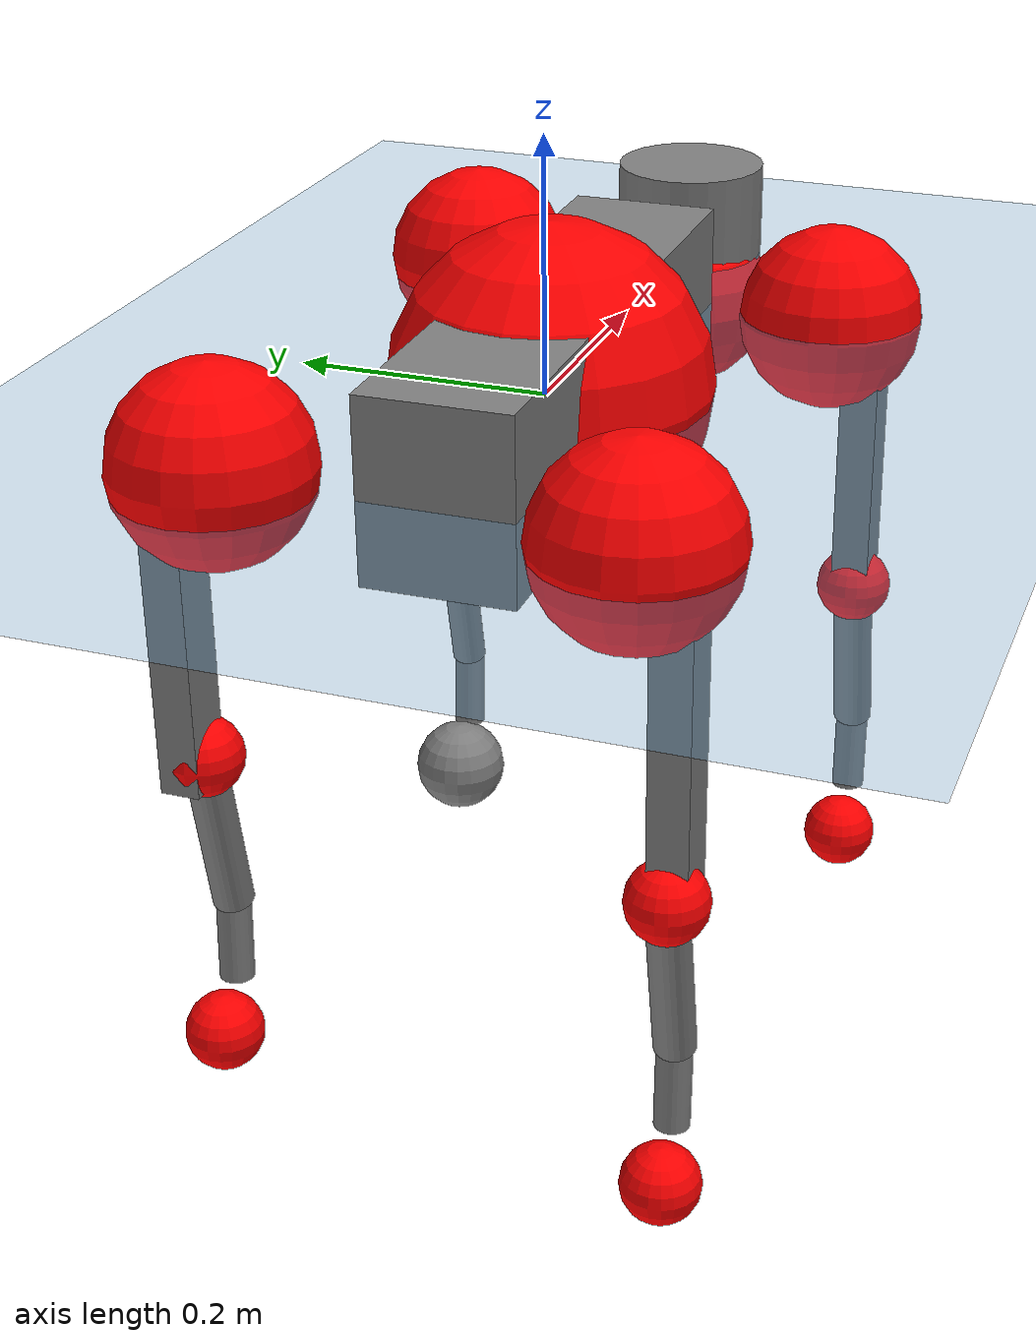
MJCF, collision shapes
<mujoco model="go2">
  <compiler angle="radian" assetdir="assets" balanceinertia="true" inertiafromgeom="false"/>

  <option timestep="0.005" density="1.2" viscosity="2e-05"/>

  <size nkey="1"/>

  <visual>
    <quality shadowsize="8192"/>
    <map shadowclip="0.5"/>
  </visual>

  <default>
    <default class="/">
      <geom contype="0" conaffinity="0" group="1" solref="-1000 -80"/>
      <site size="0.01 0.005 0.005" group="5"/>
      <general forcelimited="true" biastype="affine" gainprm="20" biasprm="0 -20 -0.5"/>
      <default class="go2">
        <joint armature="0.01" damping="0.01" frictionloss="0.2"/>
        <geom condim="1" margin="0.001"/>
        <default class="visual">
          <geom type="mesh" group="2"/>
        </default>
        <default class="collision">
          <geom group="3"/>
          <default class="foot">
            <geom size="0.022 0 0" condim="6" priority="1" friction="0.8 0.02 0.01" solimp="0.015 1 0.022"/>
          </default>
        </default>
        <default class="reward_collision_sphere">
          <geom group="5" rgba="1 0 0 1"/>
        </default>
      </default>
    </default>
  </default>

  <asset>
    <texture type="skybox" colorspace="auto" name="//unnamed_texture_0" builtin="gradient" rgb1="0.95 0.95 0.95" rgb2="0.95 0.95 0.95" width="100" height="600"/>
    <texture type="2d" colorspace="auto" name="texplane" builtin="checker" rgb1="0.345 0.575 0.748" rgb2="0.345 0.575 0.748" markrgb="1 1 1" width="512" height="512"/>
    <material name="MatPlane" class="/" texture="texplane" texuniform="true" texrepeat="2 2" specular="0.9"/>
    <material name="metal" class="/" rgba="0.9 0.95 0.95 1"/>
    <material name="black" class="/" rgba="0 0 0 1"/>
    <material name="white" class="/"/>
    <material name="gray" class="/" rgba="0.671705 0.692426 0.77427 1"/>
    <mesh name="base_0" class="/" file="base_0.obj"/>
    <mesh name="base_1" class="/" file="base_1.obj"/>
    <mesh name="base_2" class="/" file="base_2.obj"/>
    <mesh name="base_3" class="/" file="base_3.obj"/>
    <mesh name="base_4" class="/" file="base_4.obj"/>
    <mesh name="hip_0" class="/" file="hip_0.obj"/>
    <mesh name="hip_1" class="/" file="hip_1.obj"/>
    <mesh name="thigh_0" class="/" file="thigh_0.obj"/>
    <mesh name="thigh_1" class="/" file="thigh_1.obj"/>
    <mesh name="thigh_mirror_0" class="/" file="thigh_mirror_0.obj"/>
    <mesh name="thigh_mirror_1" class="/" file="thigh_mirror_1.obj"/>
    <mesh name="calf_0" class="/" file="calf_0.obj"/>
    <mesh name="calf_1" class="/" file="calf_1.obj"/>
    <mesh name="calf_mirror_0" class="/" file="calf_mirror_0.obj"/>
    <mesh name="calf_mirror_1" class="/" file="calf_mirror_1.obj"/>
    <mesh name="foot" class="/" file="foot.obj"/>
  </asset>

  <worldbody>
    <geom name="floor" class="/" size="100 100 0.125" type="plane" group="0" material="MatPlane"/>
    <light name="toplight_shadow" class="/" pos="0 0 5" dir="0.0990148 0.0990148 -0.990148" type="directional" ambient="0.04 0.04 0.04" diffuse="0.55 0.55 0.55" specular="0.12 0.12 0.12"/>
    <light name="toplight_fill" class="/" pos="0 0 5" dir="0.0990148 0.0990148 -0.990148" type="directional" castshadow="false" ambient="0.04 0.04 0.04" diffuse="0.3 0.3 0.3" specular="0.08 0.08 0.08"/>
    <body name="trunk" childclass="go2" pos="0.00939662 -0.00167441 0.00680834" quat="0.999991 -0.00227318 -0.00309406 0.00167433">
      <inertial pos="0.0344956 -0.00731984 -0.00602129" quat="0.0275101 0.692375 0.0343102 0.720197" mass="13.2141" diaginertia="0.315187 0.367988 0.0411979"/>
      <joint name="//unnamed_joint_0" type="free" armature="0" damping="0" frictionloss="0"/>
      <geom name="//unnamed_geom_1" class="visual" material="black" mesh="base_0"/>
      <geom name="//unnamed_geom_2" class="visual" material="black" mesh="base_1"/>
      <geom name="//unnamed_geom_3" class="visual" material="black" mesh="base_2"/>
      <geom name="//unnamed_geom_4" class="visual" material="white" mesh="base_3"/>
      <geom name="//unnamed_geom_5" class="visual" material="gray" mesh="base_4"/>
      <geom name="trunk_1" class="collision" size="0.236677 0.0588232 0.0717203" type="box"/>
      <geom name="trunk_2" class="collision" size="0.0629125 0.0566213" pos="0.371353 0 0.0116778" type="cylinder"/>
      <geom name="trunk_3" class="collision" size="0.0591378" pos="0.381776 0 -0.0700665"/>
      <geom name="//unnamed_geom_9" class="reward_collision_sphere" size="0.125825"/>
      <geom name="//unnamed_geom_10" class="reward_collision_sphere" size="0.075495" pos="0.364838 0 -0.0525499"/>
      <site name="imu" pos="-0.0703832 0.0732252 0.0741197" size="0.0125825"/>
      <camera name="track" pos="0 -2.60797 0" quat="0.707107 0.707107 0 0" mode="trackcom"/>
      <camera name="ego_camera" pos="0.406533 0 0.0525499" quat="-0.5 -0.5 0.5 0.5"/>
      <body name="FL_hip" pos="0.251775 0.0629476 0.00582555" quat="0.999975 -0.00209559 0.00628477 -0.00259515">
        <inertial pos="-6.00443e-05 0.00245576 0.00347909" quat="0.466029 0.490499 0.507094 0.533932" mass="1.12745" diaginertia="0.00280379 0.00191537 0.000798787"/>
        <joint name="FL_hip_joint" pos="0 0 0" axis="0.999304 0.0205552 -0.0311379" stiffness="0.0187756" range="-1.298 1.01228" armature="0.0058886" damping="0.0109142" frictionloss="0.274677"/>
        <geom name="//unnamed_geom_11" class="visual" material="metal" mesh="hip_0"/>
        <geom name="//unnamed_geom_12" class="visual" material="gray" mesh="hip_1"/>
        <geom name="//unnamed_geom_13" class="collision" size="0.0578795 0.025165" pos="0 0.104319 0" quat="0.707107 0.707107 0 0" type="cylinder"/>
        <geom name="//unnamed_geom_14" class="reward_collision_sphere" size="0.075495" pos="0 0.0912788 0"/>
        <body name="FL_thigh" pos="-0.000853491 0.127598 0.00428239" quat="1 0.00028007 -0.000348102 0.000126422">
          <inertial pos="-0.00509343 -0.0163916 -0.0234905" quat="0.82284 0.0766332 -0.033061 0.562112" mass="2.35861" diaginertia="0.0217495 0.0240386 0.00184967"/>
          <joint name="FL_thigh_joint" pos="0 0 0" axis="0.00272412 0.999937 0.0108679" range="-1.54609 3.20979" armature="0.0173544" damping="0.0813508" frictionloss="0.247466"/>
          <geom name="//unnamed_geom_15" class="visual" material="metal" mesh="thigh_0"/>
          <geom name="//unnamed_geom_16" class="visual" material="gray" mesh="thigh_1"/>
          <geom name="//unnamed_geom_17" class="collision" size="0.134004 0.0154136 0.0213903" pos="0 0 -0.124368" quat="0.707107 0 0.707107 0" type="box"/>
          <body name="FL_calf" pos="-0.0149346 -0.0134454 -0.257897" quat="1 0.000155129 3.91376e-05 -0.000124168">
            <inertial pos="0.0122315 0.00670757 -0.174065" quat="0.712459 -0.00266232 -0.00808322 0.701662" mass="0.409076" diaginertia="0.00501031 0.00578575 0.000118295"/>
            <joint name="FL_calf_joint" pos="0 0 0" axis="0.00943809 0.999879 0.0123728" stiffness="0.070625" range="-2.89904 -0.601918" armature="0.0133956" damping="0" frictionloss="0.268668"/>
            <geom name="//unnamed_geom_18" class="visual" material="gray" mesh="calf_0"/>
            <geom name="//unnamed_geom_19" class="visual" material="black" mesh="calf_1"/>
            <geom name="FL_calf0" class="collision" size="0.015099 0.075495" pos="0.0104239 0 -0.0700665" quat="0.994493 0 -0.104807 0" type="cylinder"/>
            <geom name="//unnamed_geom_21" class="collision" size="0.0138408 0.0408931" pos="0.0260598 0 -0.172831" quat="0.999688 0 0.0249974 0" type="cylinder"/>
            <geom name="//unnamed_geom_22" class="visual" pos="0 0 -0.248736" quat="1 0 0 0" material="black" mesh="foot"/>
            <geom name="FL_foot" class="foot" size="0.0414603" pos="-0.00260598 0 -0.248736"/>
            <geom name="//unnamed_geom_24" class="reward_collision_sphere" size="0.0314563"/>
            <geom name="//unnamed_geom_25" class="reward_collision_sphere" size="0.0314563" pos="-0.00260598 0 -0.248736"/>
            <site name="FL_foot" class="foot" pos="-0.00260598 0 -0.248736" size="0.0125825"/>
          </body>
        </body>
      </body>
      <body name="FR_hip" pos="0.245445 -0.0675259 -0.0130769" quat="1 -0.000269198 -0.000135481 -3.441e-05">
        <inertial pos="-0.0034213 0.00642044 0.000515718" quat="0.490803 0.53669 0.448886 0.519209" mass="1.10962" diaginertia="0.00301464 0.00174312 0.000844538"/>
        <joint name="FR_hip_joint" pos="0 0 0" axis="0.999999 -0.00163664 -0.000159851" range="-1.24124 1.04094" armature="0.0128144" damping="0" frictionloss="0.193381"/>
        <geom name="//unnamed_geom_26" class="visual" pos="0 1.18659e-09 5.08952e-08" quat="4.63268e-05 1 0 0" material="metal" mesh="hip_0"/>
        <geom name="//unnamed_geom_27" class="visual" pos="0 1.9236e-09 -1.25883e-07" quat="4.63268e-05 1 0 0" material="gray" mesh="hip_1"/>
        <geom name="//unnamed_geom_28" class="collision" size="0.0578795 0.025165" pos="0 -0.104319 0" quat="0.707107 0.707107 0 0" type="cylinder"/>
        <geom name="//unnamed_geom_29" class="reward_collision_sphere" size="0.075495" pos="0 -0.0912788 0"/>
        <body name="FR_thigh" pos="-0.00641125 -0.124257 0.0105142" quat="0.999998 -0.00137381 0.00159343 -0.000420211">
          <inertial pos="-0.00445521 0.0296288 -0.0248082" quat="0.549885 -0.0769355 0.0365627 0.830886" mass="1.81793" diaginertia="0.0203401 0.0185139 0.00160463"/>
          <joint name="FR_thigh_joint" pos="0 0 0" axis="-0.0020836 -0.999972 0.00724318" stiffness="0.020859" range="-3.22932 1.36074" armature="0.0186947" damping="0.0147161" frictionloss="0.214292"/>
          <geom name="//unnamed_geom_30" class="visual" material="metal" mesh="thigh_mirror_0"/>
          <geom name="//unnamed_geom_31" class="visual" material="gray" mesh="thigh_mirror_1"/>
          <geom name="//unnamed_geom_32" class="collision" size="0.134004 0.0154136 0.0213903" pos="0 0 -0.124368" quat="0.707107 0 0.707107 0" type="box"/>
          <body name="FR_calf" pos="-0.00133507 -0.000372148 -0.247802" quat="1 0.000144602 -0.000182328 2.55845e-05">
            <inertial pos="0.00574726 0.00142202 -0.180138" quat="0.719333 -0.0303262 0.0123066 0.693894" mass="0.643912" diaginertia="0.0061784 0.0053688 0.000158216"/>
            <joint name="FR_calf_joint" pos="0 0 0" axis="-0.00263012 -0.999776 0.0209791" stiffness="0.0306863" range="0.854632 2.86437" armature="0.00647921" damping="0.00704053" frictionloss="0.254976"/>
            <geom name="//unnamed_geom_33" class="visual" material="gray" mesh="calf_mirror_0"/>
            <geom name="//unnamed_geom_34" class="visual" material="black" mesh="calf_mirror_1"/>
            <geom name="FR_calf0" class="collision" size="0.0163573 0.075495" pos="0.0130299 0 -0.0700665" quat="0.995004 0 -0.0998334 0" type="cylinder"/>
            <geom name="//unnamed_geom_36" class="collision" size="0.0138408 0.0408931" pos="0.0260598 0 -0.172831" quat="0.999688 0 0.0249974 0" type="cylinder"/>
            <geom name="//unnamed_geom_37" class="visual" pos="0 0 -0.248736" quat="1 0 0 0" material="black" mesh="foot"/>
            <geom name="FR_foot" class="foot" size="0.0219112" pos="-0.00260598 0 -0.248736"/>
            <geom name="//unnamed_geom_39" class="reward_collision_sphere" size="0.0314563"/>
            <geom name="//unnamed_geom_40" class="reward_collision_sphere" size="0.0314563" pos="-0.00260598 0 -0.248736"/>
            <site name="FR_foot" class="foot" pos="-0.00260598 0 -0.248736" size="0.0125825"/>
          </body>
        </body>
      </body>
      <body name="RL_hip" pos="-0.249682 0.0670669 0.012708" quat="1 -0.000143544 0.000184255 0.000105387">
        <inertial pos="0.00808692 0.00304645 0.0123662" quat="0.511231 0.498834 0.494778 0.494977" mass="1.15843" diaginertia="0.00288416 0.00253553 0.00105199"/>
        <joint name="RL_hip_joint" pos="0 0 0" axis="-0.999916 0.0125653 0.00320707" range="-1.33246 0.800943" armature="0.0124063" damping="0.0497167" frictionloss="0.0968902"/>
        <geom name="//unnamed_geom_41" class="visual" pos="-1.17794e-09 0 -2.30904e-07" quat="4.63268e-05 0 1 0" material="metal" mesh="hip_0"/>
        <geom name="//unnamed_geom_42" class="visual" pos="-1.90959e-09 0 -2.04779e-07" quat="4.63268e-05 0 1 0" material="gray" mesh="hip_1"/>
        <geom name="//unnamed_geom_43" class="collision" size="0.0578795 0.025165" pos="0 0.104319 0" quat="0.707107 0.707107 0 0" type="cylinder"/>
        <geom name="//unnamed_geom_44" class="reward_collision_sphere" size="0.075495" pos="0 0.0912788 0"/>
        <body name="RL_thigh" pos="-0.000318622 0.127809 -0.00289618" quat="1 6.82431e-05 0.000180242 8.13887e-05">
          <inertial pos="0.00711342 -0.0311097 -0.0236083" quat="0.85297 0.0792569 -0.0598137 0.512428" mass="2.19305" diaginertia="0.0241488 0.0205937 0.0020495"/>
          <joint name="RL_thigh_joint" pos="0 0 0" axis="0.0508598 0.998224 0.031019" stiffness="0.0225275" range="-0.278826 4.58871" armature="0.00936078" damping="0" frictionloss="0.240578"/>
          <geom name="//unnamed_geom_45" class="visual" material="metal" mesh="thigh_0"/>
          <geom name="//unnamed_geom_46" class="visual" material="gray" mesh="thigh_1"/>
          <geom name="//unnamed_geom_47" class="collision" size="0.134004 0.0154136 0.0213903" pos="0 0 -0.124368" quat="0.707107 0 0.707107 0" type="box"/>
          <body name="RL_calf" pos="0.00827309 -0.00587887 -0.238842" quat="1 1.08424e-05 -1.11736e-05 1.79165e-05">
            <inertial pos="0.000649141 0.00717343 -0.173915" quat="0.707918 -0.0440986 0.0225705 0.704556" mass="0.548506" diaginertia="0.00559583 0.00522187 0.000124174"/>
            <joint name="RL_calf_joint" pos="0 0 0" axis="-0.014581 0.999381 -0.0320221" stiffness="0.0735515" range="-2.8153 -0.827626" armature="0.0109806" damping="0.00331173" frictionloss="0.153995"/>
            <geom name="//unnamed_geom_48" class="visual" material="gray" mesh="calf_0"/>
            <geom name="//unnamed_geom_49" class="visual" material="black" mesh="calf_1"/>
            <geom name="RL_calf0" class="collision" size="0.0163573 0.075495" pos="0.0130299 0 -0.0700665" quat="0.995004 0 -0.0998334 0" type="cylinder"/>
            <geom name="//unnamed_geom_51" class="collision" size="0.0138408 0.0408931" pos="0.0260598 0 -0.172831" quat="0.999688 0 0.0249974 0" type="cylinder"/>
            <geom name="//unnamed_geom_52" class="visual" pos="0 0 -0.248736" quat="1 0 0 0" material="black" mesh="foot"/>
            <geom name="RL_foot" class="foot" size="0.0223129" pos="-0.00260598 0 -0.248736"/>
            <geom name="//unnamed_geom_54" class="reward_collision_sphere" size="0.0314563"/>
            <geom name="//unnamed_geom_55" class="reward_collision_sphere" size="0.0314563" pos="-0.00260598 0 -0.248736"/>
            <site name="RL_foot" class="foot" pos="-0.00260598 0 -0.248736" size="0.0125825"/>
          </body>
        </body>
      </body>
      <body name="RR_hip" pos="-0.250778 -0.0565688 -0.000418682" quat="0.999997 0.000629847 -0.00233861 0.00090762">
        <inertial pos="0.00767683 -0.0146137 0.00926172" quat="0.499203 0.496601 0.49913 0.505028" mass="1.46841" diaginertia="0.00400479 0.00272279 0.00123583"/>
        <joint name="RR_hip_joint" pos="0 0 0" axis="-0.999741 -0.0210951 0.00859054" range="-1.14987 1.26194" armature="0.016845" damping="0.0654633" frictionloss="0.189671"/>
        <geom name="//unnamed_geom_56" class="visual" pos="1.17798e-09 1.18659e-09 -2.81799e-07" quat="2.14617e-09 4.63268e-05 4.63268e-05 -1" material="metal" mesh="hip_0"/>
        <geom name="//unnamed_geom_57" class="visual" pos="1.9095e-09 1.9236e-09 -7.88958e-08" quat="2.14617e-09 4.63268e-05 4.63268e-05 -1" material="gray" mesh="hip_1"/>
        <geom name="//unnamed_geom_58" class="collision" size="0.0578795 0.025165" pos="0 -0.104319 0" quat="0.707107 0.707107 0 0" type="cylinder"/>
        <geom name="//unnamed_geom_59" class="reward_collision_sphere" size="0.075495" pos="0 -0.0912788 0"/>
        <body name="RR_thigh" pos="-0.00238355 -0.122537 -0.0129951" quat="1 -0.000346736 -0.00025818 0.000330858">
          <inertial pos="0.00333504 0.0196209 -0.0380559" quat="0.549882 -0.0183874 0.0803624 0.831164" mass="2.96297" diaginertia="0.0234378 0.0253051 0.00187786"/>
          <joint name="RR_thigh_joint" pos="0 0 0" axis="-0.0203073 -0.999646 0.0171925" range="-4.27731 0.279657" armature="0.0124589" damping="0.0027853" frictionloss="0.390526"/>
          <geom name="//unnamed_geom_60" class="visual" material="metal" mesh="thigh_mirror_0"/>
          <geom name="//unnamed_geom_61" class="visual" material="gray" mesh="thigh_mirror_1"/>
          <geom name="//unnamed_geom_62" class="collision" size="0.134004 0.0154136 0.0213903" pos="0 0 -0.124368" quat="0.707107 0 0.707107 0" type="box"/>
          <body name="RR_calf" pos="-0.0133361 0.00152135 -0.250712" quat="0.999999 0.000727055 0.000684052 0.00029998">
            <inertial pos="0.00344032 5.68779e-05 -0.16654" quat="0.707155 0.00143033 0.00630886 0.707029" mass="0.600051" diaginertia="0.00643191 0.00617603 0.000127764"/>
            <joint name="RR_calf_joint" pos="0 0 0" axis="-0.0369803 -0.999295 0.00652206" stiffness="0.0505432" range="0.877557 2.56889" armature="0.0162471" damping="0.072604" frictionloss="0.240287"/>
            <geom name="//unnamed_geom_63" class="visual" material="gray" mesh="calf_mirror_0"/>
            <geom name="//unnamed_geom_64" class="visual" material="black" mesh="calf_mirror_1"/>
            <geom name="RR_calf0" class="collision" size="0.0163573 0.075495" pos="0.0130299 0 -0.0700665" quat="0.995004 0 -0.0998334 0" type="cylinder"/>
            <geom name="//unnamed_geom_66" class="collision" size="0.0138408 0.0408931" pos="0.0260598 0 -0.172831" quat="0.999688 0 0.0249974 0" type="cylinder"/>
            <geom name="//unnamed_geom_67" class="visual" pos="0 0 -0.248736" quat="1 0 0 0" material="black" mesh="foot"/>
            <geom name="RR_foot" class="foot" size="0.0304582" pos="-0.00260598 0 -0.248736"/>
            <geom name="//unnamed_geom_69" class="reward_collision_sphere" size="0.0314563"/>
            <geom name="//unnamed_geom_70" class="reward_collision_sphere" size="0.0314563" pos="-0.00260598 0 -0.248736"/>
            <site name="RR_foot" class="foot" pos="-0.00260598 0 -0.248736" size="0.0125825"/>
          </body>
        </body>
      </body>
    </body>
  </worldbody>

  <contact>
    <pair class="/" geom1="floor" geom2="FL_foot" name="//unnamed_contact_0"/>
    <pair class="/" geom1="floor" geom2="FR_foot" name="//unnamed_contact_1"/>
    <pair class="/" geom1="floor" geom2="RL_foot" name="//unnamed_contact_2"/>
    <pair class="/" geom1="floor" geom2="RR_foot" name="//unnamed_contact_3"/>
  </contact>

  <actuator>
    <general name="FL_hip" class="/" joint="FL_hip_joint" forcerange="-27.3841 27.3841" gainprm="28.0558" biasprm="0 -28.0558 -0.441911"/>
    <general name="FL_thigh" class="/" joint="FL_thigh_joint" forcerange="-17.1354 17.1354" gainprm="28.0558" biasprm="0 -28.0558 -0.441911"/>
    <general name="FL_calf" class="/" joint="FL_calf_joint" forcerange="-83.838 83.838" gainprm="28.0558" biasprm="0 -28.0558 -0.441911"/>
    <general name="FR_hip" class="/" joint="FR_hip_joint" forcerange="-29.1128 29.1128" gainprm="28.0558" biasprm="0 -28.0558 -0.441911"/>
    <general name="FR_thigh" class="/" joint="FR_thigh_joint" forcerange="-20.8555 20.8555" gainprm="28.0558" biasprm="0 -28.0558 -0.441911"/>
    <general name="FR_calf" class="/" joint="FR_calf_joint" forcerange="-24.8793 24.8793" gainprm="28.0558" biasprm="0 -28.0558 -0.441911"/>
    <general name="RL_hip" class="/" joint="RL_hip_joint" forcerange="-15.6894 15.6894" gainprm="28.0558" biasprm="0 -28.0558 -0.441911"/>
    <general name="RL_thigh" class="/" joint="RL_thigh_joint" forcerange="-22.562 22.562" gainprm="28.0558" biasprm="0 -28.0558 -0.441911"/>
    <general name="RL_calf" class="/" joint="RL_calf_joint" forcerange="-59.7802 59.7802" gainprm="28.0558" biasprm="0 -28.0558 -0.441911"/>
    <general name="RR_hip" class="/" joint="RR_hip_joint" forcerange="-29.2237 29.2237" gainprm="28.0558" biasprm="0 -28.0558 -0.441911"/>
    <general name="RR_thigh" class="/" joint="RR_thigh_joint" forcerange="-45.7871 45.7871" gainprm="28.0558" biasprm="0 -28.0558 -0.441911"/>
    <general name="RR_calf" class="/" joint="RR_calf_joint" forcerange="-80.016 80.016" gainprm="28.0558" biasprm="0 -28.0558 -0.441911"/>
  </actuator>

  <sensor>
    <gyro site="imu" name="imu_angular_velocity"/>
    <velocimeter site="imu" name="imu_linear_velocity"/>
    <framelinvel objtype="site" objname="FL_foot" name="FL_foot_global_linear_velocity"/>
    <framelinvel objtype="site" objname="FR_foot" name="FR_foot_global_linear_velocity"/>
    <framelinvel objtype="site" objname="RL_foot" name="RL_foot_global_linear_velocity"/>
    <framelinvel objtype="site" objname="RR_foot" name="RR_foot_global_linear_velocity"/>
  </sensor>

  <keyframe>
    <key name="home" qpos="0 0 0.325 1 0 0 0 0.1 0.8 -1.5 -0.1 -0.8 1.5 -0.1 0.8 -1.5 0.1 -0.8 1.5"/>
  </keyframe>
</mujoco>
